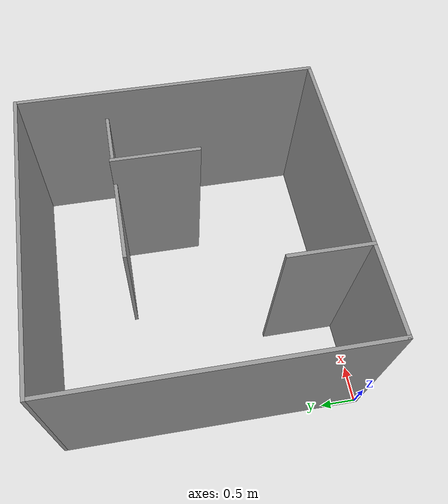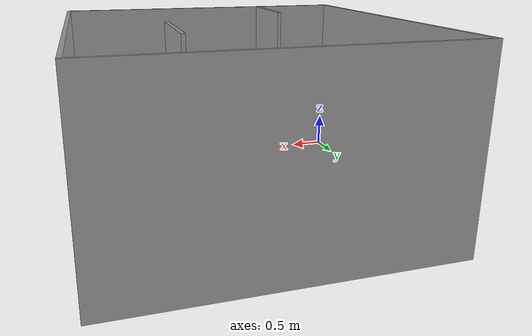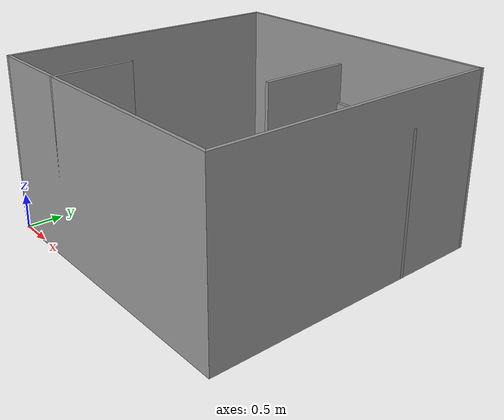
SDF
<?xml version='1.0'?>
<sdf version='1.7'>
  <model name='ChallengeMap'>
    <pose>2.10852 2.1085 0 0 -0 0</pose>
    <link name='Wall_16'>
      <collision name='Wall_16_Collision'>
        <geometry>
          <box>
            <size>4.26581 0.05 2.5</size>
          </box>
        </geometry>
        <pose>0 0 1.25 0 -0 0</pose>
      </collision>
      <visual name='Wall_16_Visual'>
        <pose>0 0 1.25 0 -0 0</pose>
        <geometry>
          <box>
            <size>4.26581 0.05 2.5</size>
          </box>
        </geometry>
        <material>
          <script>
            <uri>file://media/materials/scripts/gazebo.material</uri>
            <name>Gazebo/Grey</name>
          </script>
          <ambient>1 1 1 1</ambient>
        </material>
        <meta>
          <layer>0</layer>
        </meta>
      </visual>
      <pose>2.10848 -0.0005 0 0 -0 1.5708</pose>
    </link>
    <link name='Wall_18'>
      <collision name='Wall_18_Collision'>
        <geometry>
          <box>
            <size>4.267 0.05 2.5</size>
          </box>
        </geometry>
        <pose>0 0 1.25 0 -0 0</pose>
      </collision>
      <visual name='Wall_18_Visual'>
        <pose>0 0 1.25 0 -0 0</pose>
        <geometry>
          <box>
            <size>4.267 0.05 2.5</size>
          </box>
        </geometry>
        <material>
          <script>
            <uri>file://media/materials/scripts/gazebo.material</uri>
            <name>Gazebo/Grey</name>
          </script>
          <ambient>1 1 1 1</ambient>
        </material>
        <meta>
          <layer>0</layer>
        </meta>
      </visual>
      <pose>-1.7e-05 -2.1085 0 0 -0 0</pose>
    </link>
    <link name='Wall_20'>
      <collision name='Wall_20_Collision'>
        <geometry>
          <box>
            <size>4.267 0.05 2.5</size>
          </box>
        </geometry>
        <pose>0 0 1.25 0 -0 0</pose>
      </collision>
      <visual name='Wall_20_Visual'>
        <pose>0 0 1.25 0 -0 0</pose>
        <geometry>
          <box>
            <size>4.267 0.05 2.5</size>
          </box>
        </geometry>
        <material>
          <script>
            <uri>file://media/materials/scripts/gazebo.material</uri>
            <name>Gazebo/Grey</name>
          </script>
          <ambient>1 1 1 1</ambient>
        </material>
        <meta>
          <layer>0</layer>
        </meta>
      </visual>
      <pose>-1.7e-05 2.1085 0 0 -0 3.14159</pose>
    </link>
    <link name='Wall_22'>
      <collision name='Wall_22_Collision'>
        <geometry>
          <box>
            <size>4.267 0.05 2.5</size>
          </box>
        </geometry>
        <pose>0 0 1.25 0 -0 0</pose>
      </collision>
      <visual name='Wall_22_Visual'>
        <pose>0 0 1.25 0 -0 0</pose>
        <geometry>
          <box>
            <size>4.267 0.05 2.5</size>
          </box>
        </geometry>
        <material>
          <script>
            <uri>file://media/materials/scripts/gazebo.material</uri>
            <name>Gazebo/Grey</name>
          </script>
          <ambient>1 1 1 1</ambient>
        </material>
        <meta>
          <layer>0</layer>
        </meta>
      </visual>
      <pose>-2.10852 -0 0 0 -0 -1.5708</pose>
    </link>
    <link name='Wall_24'>
      <collision name='Wall_24_Collision'>
        <geometry>
          <box>
            <size>1.119 0.05 2.5</size>
          </box>
        </geometry>
        <pose>0 0 1.25 0 -0 0</pose>
      </collision>
      <visual name='Wall_24_Visual'>
        <pose>0 0 1.25 0 -0 0</pose>
        <geometry>
          <box>
            <size>1.119 0.05 2.5</size>
          </box>
        </geometry>
        <material>
          <script>
            <uri>file://media/materials/scripts/gazebo.material</uri>
            <name>Gazebo/Grey</name>
          </script>
          <ambient>1 1 1 1</ambient>
        </material>
        <meta>
          <layer>0</layer>
        </meta>
      </visual>
      <pose>-0.889517 -1.574 0 0 -0 1.5708</pose>
    </link>
    <link name='Wall_26'>
      <collision name='Wall_26_Collision'>
        <geometry>
          <box>
            <size>2.43807 0.05 2</size>
          </box>
        </geometry>
        <pose>0 0 1 0 -0 0</pose>
      </collision>
      <visual name='Wall_26_Visual'>
        <pose>0 0 1 0 -0 0</pose>
        <geometry>
          <box>
            <size>2.43807 0.05 2</size>
          </box>
        </geometry>
        <material>
          <script>
            <uri>file://media/materials/scripts/gazebo.material</uri>
            <name>Gazebo/Grey</name>
          </script>
          <ambient>1 1 1 1</ambient>
        </material>
        <meta>
          <layer>0</layer>
        </meta>
      </visual>
      <pose>0.914483 0.8895 0 0 -0 0</pose>
    </link>
    <link name='Wall_28'>
      <collision name='Wall_28_Collision'>
        <geometry>
          <box>
            <size>1.219 0.05 2.5</size>
          </box>
        </geometry>
        <pose>0 0 1.25 0 -0 0</pose>
      </collision>
      <visual name='Wall_28_Visual'>
        <pose>0 0 1.25 0 -0 0</pose>
        <geometry>
          <box>
            <size>1.219 0.05 2.5</size>
          </box>
        </geometry>
        <material>
          <script>
            <uri>file://media/materials/scripts/gazebo.material</uri>
            <name>Gazebo/Grey</name>
          </script>
          <ambient>1 1 1 1</ambient>
        </material>
        <meta>
          <layer>0</layer>
        </meta>
      </visual>
      <pose>0.889483 0.305 0 0 -0 1.5708</pose>
    </link>
    <static>1</static>
  </model>
</sdf>
